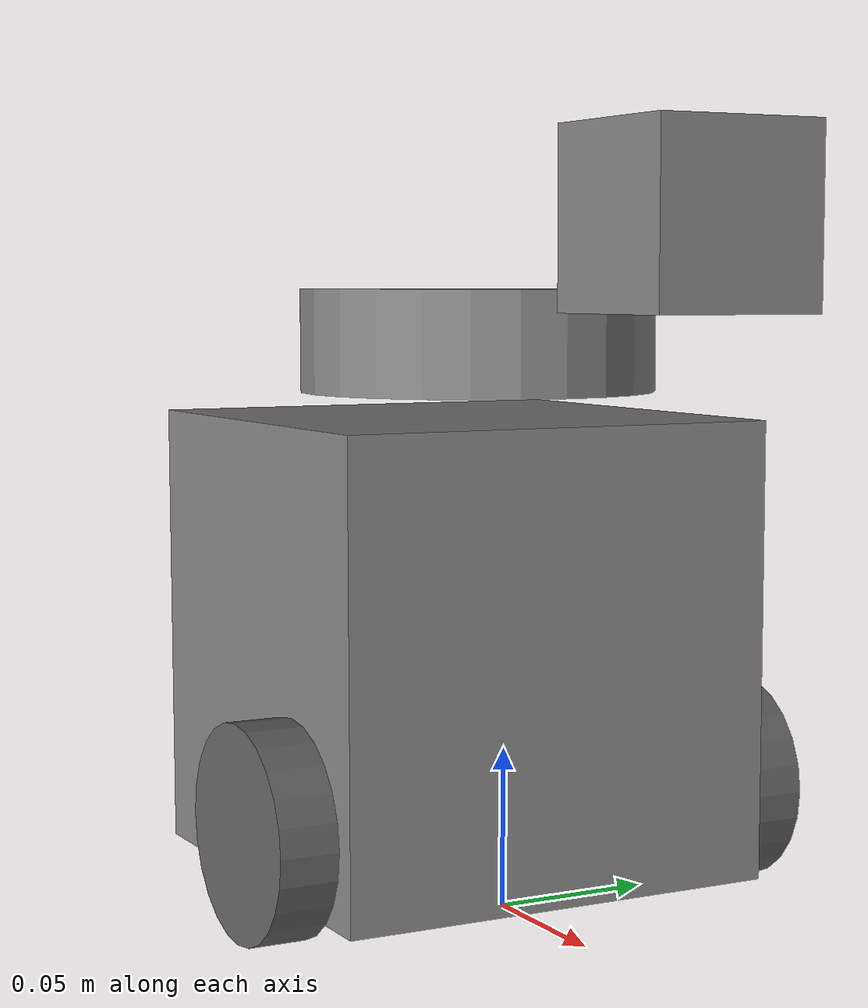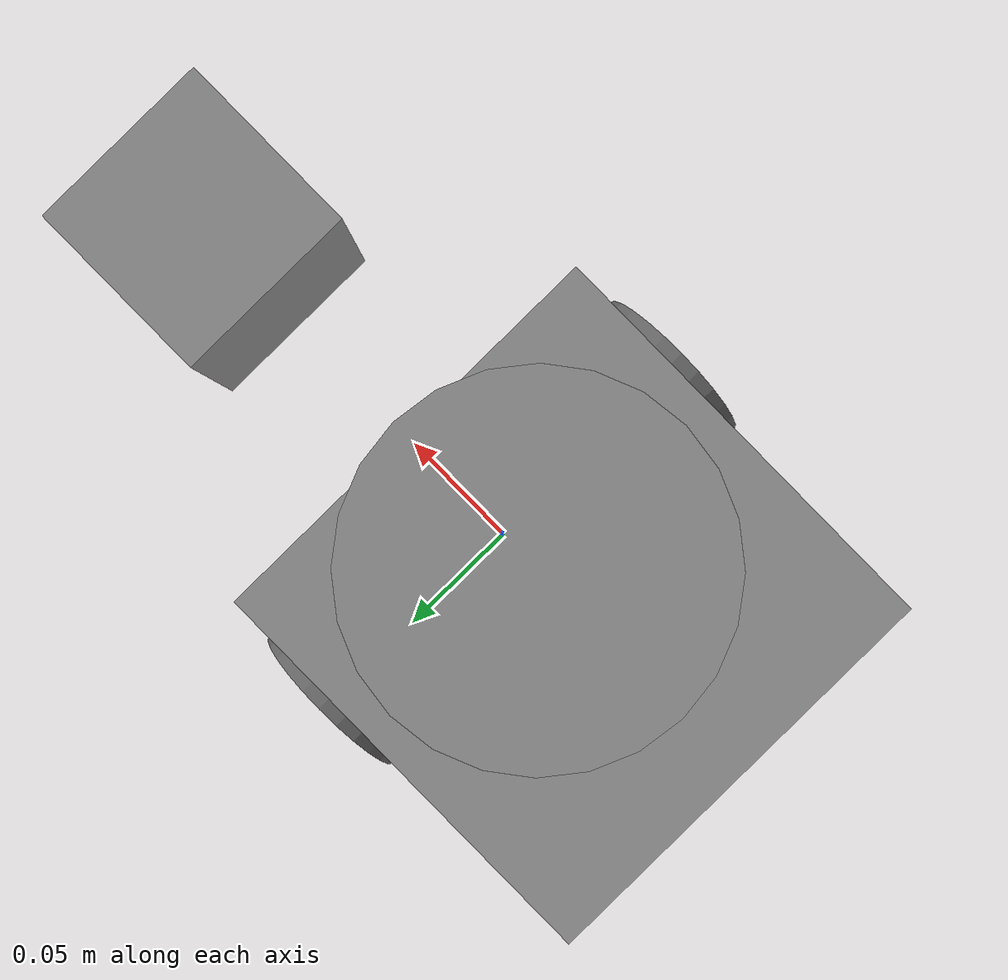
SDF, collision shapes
<sdf version='1.11'>
  <model name='turtlebot3_burger_auto_patrol'>
    <link name='base_footprint'>
      <inertial>
        <pose>0.0056923523882189296 0 0.047892861332572902 0 0 0</pose>
        <mass>1.0447350399999999</mass>
        <inertia>
          <ixx>0.010184995005566111</ixx>
          <ixy>-1.2294101000000001e-05</ixy>
          <ixz>-0.001113876368655189</ixz>
          <iyy>0.01120761218591337</iyy>
          <iyz>-5.0120903999999997e-06</iyz>
          <izz>0.0052221156803472623</izz>
        </inertia>
      </inertial>
      <collision name='base_footprint_fixed_joint_lump__base_link_collision'>
        <pose>-0.032000000000000001 0 0.080000000000000002 0 0 0</pose>
        <geometry>
          <box>
            <size>0.14000000000000001 0.14000000000000001 0.14299999999999999</size>
          </box>
        </geometry>
      </collision>
      <collision name='base_footprint_fixed_joint_lump__camera_link_collision_1'>
        <pose>0.10000000000000001 0 0.20999999999999999 0 0 0</pose>
        <geometry>
          <box>
            <size>0.050000000000000003 0.050000000000000003 0.050000000000000003</size>
          </box>
        </geometry>
        <surface>
          <contact>
            <ode/>
          </contact>
          <friction>
            <ode/>
          </friction>
        </surface>
      </collision>
      <collision name='base_footprint_fixed_joint_lump__caster_back_link_collision_2'>
        <pose>-0.081000000000000003 7.9632671073329338e-07 0.0050000003170681652 -1.5700000000000001 0 0</pose>
        <geometry>
          <box>
            <size>0.029999999999999999 0.0089999999999999993 0.02</size>
          </box>
        </geometry>
      </collision>
      <collision name='base_footprint_fixed_joint_lump__base_scan_collision_3'>
        <pose>-0.017000000000000001 0 0.17549999999999999 0 0 0</pose>
        <geometry>
          <cylinder>
            <length>0.0315</length>
            <radius>0.055</radius>
          </cylinder>
        </geometry>
      </collision>
      <visual name='base_footprint_fixed_joint_lump__base_link_visual'>
        <pose>-0.032000000000000001 0 0.01 0 0 0</pose>
        <geometry>
          <mesh>
            <scale>0.001 0.001 0.001</scale>
            <uri>model://turtlebot3_description/meshes/bases/burger_base.stl</uri>
          </mesh>
        </geometry>
        <material>
          <diffuse>0.5 0.5 0.5 1</diffuse>
          <ambient>0.5 0.5 0.5 1</ambient>
        </material>
      </visual>
      <visual name='base_footprint_fixed_joint_lump__camera_link_visual_1'>
        <pose>0.10000000000000001 0 0.20999999999999999 0 0 0</pose>
        <geometry>
          <box>
            <size>0.050000000000000003 0.050000000000000003 0.050000000000000003</size>
          </box>
        </geometry>
        <material>
          <diffuse>0 0 0 1</diffuse>
          <ambient>0 0 0 1</ambient>
        </material>
      </visual>
      <visual name='base_footprint_fixed_joint_lump__base_scan_visual_2'>
        <pose>-0.032000000000000001 0 0.182 0 0 0</pose>
        <geometry>
          <mesh>
            <scale>0.001 0.001 0.001</scale>
            <uri>model://turtlebot3_description/meshes/sensors/lds.stl</uri>
          </mesh>
        </geometry>
        <material>
          <diffuse>0.37500003 0.37500003 0.37500003 1</diffuse>
          <ambient>0.37500003 0.37500003 0.37500003 1</ambient>
        </material>
      </visual>
      <sensor name='camera_sensor' type='camera'>
        <always_on>true</always_on>
        <update_rate>30</update_rate>
        <visualize>true</visualize>
        <camera>
          <horizontal_fov>1.0469999999999999</horizontal_fov>
          <image>
            <width>640</width>
            <height>480</height>
            <format>R8G8B8</format>
          </image>
          <clip>
            <near>0.10000000000000001</near>
            <far>100</far>
          </clip>
        </camera>
        <pose>0.10000000000000001 0 0.20999999999999999 0 0 0</pose>
      </sensor>
    </link>
    <joint name='wheel_left_joint' type='revolute'>
      <pose relative_to='base_footprint'>0 0.080000000000000002 0.033000000000000002 -1.5700000000000001 0 0</pose>
      <parent>base_footprint</parent>
      <child>wheel_left_link</child>
      <axis>
        <xyz>0 0 1</xyz>
        <limit>
          <lower>-inf</lower>
          <upper>inf</upper>
        </limit>
        <dynamics>
          <spring_reference>0</spring_reference>
          <spring_stiffness>0</spring_stiffness>
        </dynamics>
      </axis>
    </joint>
    <link name='wheel_left_link'>
      <pose relative_to='wheel_left_joint'>0 0 0 0 0 0</pose>
      <inertial>
        <pose>0 0 0 0 0 0</pose>
        <mass>0.02849894</mass>
        <inertia>
          <ixx>1.117558e-05</ixx>
          <ixy>-4.2369783000000002e-11</ixy>
          <ixz>-5.9381719000000002e-09</ixz>
          <iyy>1.1192413e-05</iyy>
          <iyz>-1.4400107e-11</iyz>
          <izz>2.0712558000000001e-05</izz>
        </inertia>
      </inertial>
      <collision name='wheel_left_link_collision'>
        <pose>0 0 0 0 0 0</pose>
        <geometry>
          <cylinder>
            <length>0.017999999999999999</length>
            <radius>0.033000000000000002</radius>
          </cylinder>
        </geometry>
      </collision>
      <visual name='wheel_left_link_visual'>
        <pose>0 0 0 1.5700000000000001 0 0</pose>
        <geometry>
          <mesh>
            <scale>0.001 0.001 0.001</scale>
            <uri>model://turtlebot3_description/meshes/wheels/left_tire.stl</uri>
          </mesh>
        </geometry>
        <material>
          <diffuse>0.37500003 0.37500003 0.37500003 1</diffuse>
          <ambient>0.37500003 0.37500003 0.37500003 1</ambient>
        </material>
      </visual>
    </link>
    <joint name='wheel_right_joint' type='revolute'>
      <pose relative_to='base_footprint'>0 -0.080000000000000002 0.033000000000000002 -1.5700000000000001 0 0</pose>
      <parent>base_footprint</parent>
      <child>wheel_right_link</child>
      <axis>
        <xyz>0 0 1</xyz>
        <limit>
          <lower>-inf</lower>
          <upper>inf</upper>
        </limit>
        <dynamics>
          <spring_reference>0</spring_reference>
          <spring_stiffness>0</spring_stiffness>
        </dynamics>
      </axis>
    </joint>
    <link name='wheel_right_link'>
      <pose relative_to='wheel_right_joint'>0 0 0 0 0 0</pose>
      <inertial>
        <pose>0 0 0 0 0 0</pose>
        <mass>0.02849894</mass>
        <inertia>
          <ixx>1.117558e-05</ixx>
          <ixy>-4.2369783000000002e-11</ixy>
          <ixz>-5.9381719000000002e-09</ixz>
          <iyy>1.1192413e-05</iyy>
          <iyz>-1.4400107e-11</iyz>
          <izz>2.0712558000000001e-05</izz>
        </inertia>
      </inertial>
      <collision name='wheel_right_link_collision'>
        <pose>0 0 0 0 0 0</pose>
        <geometry>
          <cylinder>
            <length>0.017999999999999999</length>
            <radius>0.033000000000000002</radius>
          </cylinder>
        </geometry>
      </collision>
      <visual name='wheel_right_link_visual'>
        <pose>0 0 0 1.5700000000000001 0 0</pose>
        <geometry>
          <mesh>
            <scale>0.001 0.001 0.001</scale>
            <uri>model://turtlebot3_description/meshes/wheels/right_tire.stl</uri>
          </mesh>
        </geometry>
        <material>
          <diffuse>0.37500003 0.37500003 0.37500003 1</diffuse>
          <ambient>0.37500003 0.37500003 0.37500003 1</ambient>
        </material>
      </visual>
    </link>
    <frame name='camera_joint' attached_to='base_link'>
      <pose>0.10000000000000001 0 0.20000000000000001 0 0 0</pose>
    </frame>
    <frame name='camera_link' attached_to='camera_joint'>
      <pose>0 0 0 0 0 0</pose>
    </frame>
    <frame name='caster_back_joint' attached_to='base_link'>
      <pose>-0.081000000000000003 0 -0.0040000000000000001 -1.5700000000000001 0 0</pose>
    </frame>
    <frame name='caster_back_link' attached_to='caster_back_joint'>
      <pose>0 0 0 0 0 0</pose>
    </frame>
    <frame name='imu_joint' attached_to='base_link'>
      <pose>-0.032000000000000001 0 0.068000000000000005 0 0 0</pose>
    </frame>
    <frame name='imu_link' attached_to='imu_joint'>
      <pose>0 0 0 0 0 0</pose>
    </frame>
    <frame name='scan_joint' attached_to='base_link'>
      <pose>-0.032000000000000001 0 0.17199999999999999 0 0 0</pose>
    </frame>
    <frame name='base_scan' attached_to='scan_joint'>
      <pose>0 0 0 0 0 0</pose>
    </frame>
    <frame name='base_joint' attached_to='base_footprint'>
      <pose>0 0 0.01 0 0 0</pose>
    </frame>
    <frame name='base_link' attached_to='base_joint'>
      <pose>0 0 0 0 0 0</pose>
    </frame>
  </model>
</sdf>
